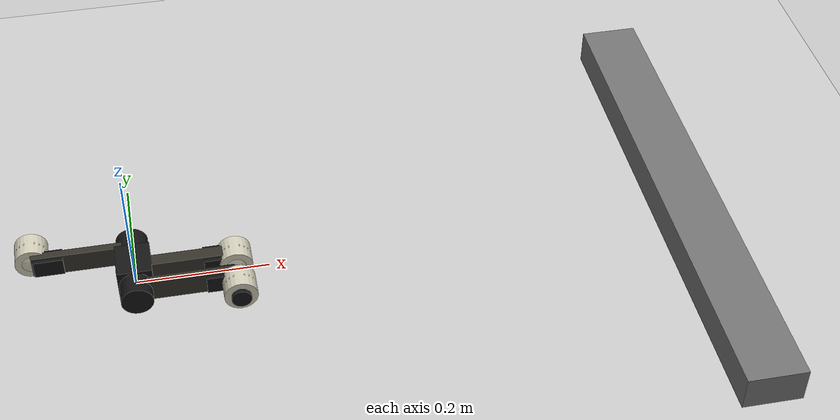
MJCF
<mujoco model="three_wheel_nested_mjx_flat">

  <compiler angle="radian"
            coordinate="local"
            inertiafromgeom="true"
            autolimits="true"/>

  <option timestep="0.01"
          gravity="0 0 -9.81"
          solver="Newton"
          iterations="80"
          integrator="RK4"/>

  <default>
    <joint damping="0.02"
           armature="0.0005"
           frictionloss="0.001"/>

    <geom contype="1"
          conaffinity="1"
          condim="3"
          friction="1.3 0.01 0.001"
          solref="0.01 1"
          solimp="0.9 0.95 0.001"/>

    <velocity ctrllimited="true"
              forcelimited="true"/>

    <position ctrllimited="true"
              forcelimited="true"/>
  </default>

  <asset>
    <texture name="grid"
             type="2d"
             builtin="checker"
             width="512"
             height="512"
             rgb1="0.85 0.85 0.85"
             rgb2="0.72 0.72 0.72"/>

    <material name="ground_mat"
              texture="grid"
              texrepeat="6 6"
              reflectance="0.1"/>

    <material name="leg_mat"
              rgba="0.20 0.19 0.16 1"/>

    <material name="wheel_mat"
              rgba="0.82 0.80 0.72 1"/>

    <material name="hub_mat"
              rgba="0.08 0.08 0.08 1"/>

    <material name="collision_wheel_mat"
              rgba="0.82 0.80 0.72 0.35"/>
    <material name="obstacle_mat"
              rgba="0.45 0.45 0.45 1"/>
  </asset>

  <worldbody>

    <light name="top_light"
           pos="0 0 3"
           dir="0 0 -1"
           diffuse="0.8 0.8 0.8"/>

    <camera name="cad_like_camera"
            pos="-0.65 -1.0 0.42"
            xyaxes="0.84 -0.54 0 0.22 0.34 0.91"/>

    <geom name="floor"
          type="plane"
          pos="0 0 0"
          size="5 2 0.1"
          material="ground_mat"
          friction="1.4 0.01 0.001"/>
      <!-- Low rectangular obstacle for later climbing / traversal. -->
    <geom name="step_obstacle"
          type="box"
          pos="0.85 0 0.0275"
          size="0.045 0.40 0.0275"
          material="obstacle_mat"
          friction="1.4 0.01 0.001"/>

    <!--
      Central root.
      qpos0 z = 0.025 m so all three wheel collision spheres initially touch ground.
    -->
    <body name="central_hub" pos="0 0 0.025">

      <freejoint name="root"/>

      <site name="imu"
            pos="0 0 0.020"
            size="0.006"
            rgba="0 1 0 1"/>

      <!-- Invisible electronics/battery mass. Collisionless box, MJX-safe. -->
      <geom name="electronics_mass"
            type="box"
            pos="0 0 0.012"
            size="0.035 0.022 0.012"
            mass="0.080"
            contype="0"
            conaffinity="0"
            rgba="0 0 0 0"/>

      <!-- Visual middle hub. Collisionless cylinder to avoid cylinder-box collision. -->
      <geom name="middle_hub_visual"
            type="cylinder"
            pos="0 0 0"
            euler="1.57079632679 0 0"
            size="0.024 0.065"
            mass="0.055"
            material="hub_mat"
            contype="0"
            conaffinity="0"/>

      <!-- Small physical central collision mass, using box instead of cylinder. -->
      <geom name="middle_hub_collision"
            type="box"
            pos="0 0 0"
            size="0.026 0.030 0.026"
            mass="0.001"
            material="hub_mat"
            friction="1.2 0.01 0.001"/>

      <!-- FRONT LOWER LEG                                           -->
      <!-- q = 0: points forward along +x                            -->
      <!-- q > 0: folds downward                                     -->

      <body name="front_lower_leg" pos="0 0 0">

        <joint name="front_lower_fold_hinge"
               type="hinge"
               axis="0 1 0"
               range="0.0 1.75"
               damping="0.08"
               armature="0.002"
               frictionloss="0.002"
               limited="true"/>

        <geom name="front_lower_side_arm"
              type="box"
              pos="0.075 -0.040 0"
              size="0.075 0.006 0.0175"
              mass="0.045"
              material="leg_mat"/>

        <geom name="front_lower_motor_pod"
              type="box"
              pos="0.125 -0.040 0"
              size="0.022 0.012 0.014"
              mass="0.015"
              material="hub_mat"/>

        <body name="front_lower_wheel" pos="0.150 -0.062 0">

          <joint name="front_lower_wheel_hinge"
                 type="hinge"
                 axis="0 1 0"
                 damping="0.01"
                 armature="0.0005"
                 frictionloss="0.0005"/>

          <!-- Visual wheel cylinder. Collisionless. -->
          <geom name="front_lower_wheel_visual"
                type="cylinder"
                euler="1.57079632679 0 0"
                size="0.025 0.020"
                mass="0.0001"
                material="wheel_mat"
                contype="0"
                conaffinity="0"/>

          <!-- Physical wheel collision. MJX-friendly sphere. -->
          <geom name="front_lower_wheel_collision"
                type="sphere"
                size="0.025"
                mass="0.050"
                material="collision_wheel_mat"
                friction="1.6 0.01 0.001"/>

          <!-- Visual hub cap. Collisionless cylinder. -->
          <geom name="front_lower_wheel_cap"
                type="cylinder"
                euler="1.57079632679 0 0"
                pos="0 -0.022 0"
                size="0.015 0.004"
                mass="0.0001"
                material="hub_mat"
                contype="0"
                conaffinity="0"/>

        </body>

      </body>

      <!-- REAR LOWER LEG                                            -->
      <!-- q = 0: points backward along -x                           -->
      <!-- q < 0: folds downward                                     -->

      <body name="rear_lower_leg" pos="0 0 0">

        <joint name="rear_lower_fold_hinge"
               type="hinge"
               axis="0 1 0"
               range="-1.75 0.0"
               damping="0.08"
               armature="0.002"
               frictionloss="0.002"
               limited="true"/>

        <geom name="rear_lower_side_arm"
              type="box"
              pos="-0.075 0.040 0"
              size="0.075 0.006 0.0175"
              mass="0.045"
              material="leg_mat"/>

        <geom name="rear_lower_motor_pod"
              type="box"
              pos="-0.125 0.040 0"
              size="0.022 0.012 0.014"
              mass="0.015"
              material="hub_mat"/>

        <body name="rear_lower_wheel" pos="-0.150 0.062 0">

          <joint name="rear_lower_wheel_hinge"
                 type="hinge"
                 axis="0 1 0"
                 damping="0.01"
                 armature="0.0005"
                 frictionloss="0.0005"/>

          <!-- Visual wheel cylinder. Collisionless. -->
          <geom name="rear_lower_wheel_visual"
                type="cylinder"
                euler="1.57079632679 0 0"
                size="0.025 0.020"
                mass="0.0001"
                material="wheel_mat"
                contype="0"
                conaffinity="0"/>

          <!-- Physical wheel collision. MJX-friendly sphere. -->
          <geom name="rear_lower_wheel_collision"
                type="sphere"
                size="0.025"
                mass="0.050"
                material="collision_wheel_mat"
                friction="1.6 0.01 0.001"/>

          <!-- Visual hub cap. Collisionless cylinder. -->
          <geom name="rear_lower_wheel_cap"
                type="cylinder"
                euler="1.57079632679 0 0"
                pos="0 0.022 0"
                size="0.015 0.004"
                mass="0.0001"
                material="hub_mat"
                contype="0"
                conaffinity="0"/>

        </body>

      </body>

      <!-- CENTERED UPPER ARM                                        -->
      <!-- q = 0: stowed horizontally along +x                       -->
      <!-- q > 0: swings downward                                    -->
      <!-- q < 0: swings upward                                      -->

      <body name="upper_swing_arm" pos="0 0 0">

        <joint name="upper_swing_hinge"
               type="hinge"
               axis="0 1 0"
               range="-1.75 1.75"
               damping="0.08"
               armature="0.003"
               frictionloss="0.002"
               limited="true"/>

        <!-- Visual swing hub. Collisionless cylinder. -->
        <geom name="upper_swing_hub_visual"
              type="cylinder"
              pos="0 0 0"
              euler="1.57079632679 0 0"
              size="0.019 0.045"
              mass="0.030"
              material="hub_mat"
              contype="0"
              conaffinity="0"/>

        <!-- Small physical hub collision as box. -->
        <geom name="upper_swing_hub_collision"
              type="box"
              pos="0 0 0"
              size="0.020 0.020 0.020"
              mass="0.001"
              material="hub_mat"
              friction="1.2 0.01 0.001"/>

        <geom name="upper_inner_arm"
              type="box"
              pos="0.075 0 0"
              size="0.075 0.010 0.0175"
              mass="0.060"
              material="leg_mat"/>

        <geom name="upper_motor_pod"
              type="box"
              pos="0.125 0 0"
              size="0.022 0.016 0.014"
              mass="0.015"
              material="hub_mat"/>

        <body name="upper_wheel" pos="0.150 0 0">

          <joint name="upper_wheel_hinge"
                 type="hinge"
                 axis="0 1 0"
                 damping="0.01"
                 armature="0.0005"
                 frictionloss="0.0005"/>

          <!-- Visual wheel cylinder. Collisionless. -->
          <geom name="upper_wheel_visual"
                type="cylinder"
                euler="1.57079632679 0 0"
                size="0.025 0.020"
                mass="0.0001"
                material="wheel_mat"
                contype="0"
                conaffinity="0"/>

          <!-- Physical wheel collision. MJX-friendly sphere. -->
          <geom name="upper_wheel_collision"
                type="sphere"
                size="0.025"
                mass="0.050"
                material="collision_wheel_mat"
                friction="1.6 0.01 0.001"/>

          <!-- Visual hub cap. Collisionless cylinder. -->
          <geom name="upper_wheel_cap"
                type="cylinder"
                euler="1.57079632679 0 0"
                pos="0 0.022 0"
                size="0.015 0.004"
                mass="0.0001"
                material="hub_mat"
                contype="0"
                conaffinity="0"/>

        </body>

      </body>

    </body>

  </worldbody>

  <!--
    Internal collision exclusions.
    Wheels still collide with floor.
    Internal mechanical parts are excluded for stable flat-ground training.
  -->
  <contact>
    <exclude body1="central_hub" body2="front_lower_leg"/>
    <exclude body1="central_hub" body2="rear_lower_leg"/>
    <exclude body1="central_hub" body2="upper_swing_arm"/>

    <exclude body1="front_lower_leg" body2="front_lower_wheel"/>
    <exclude body1="rear_lower_leg" body2="rear_lower_wheel"/>
    <exclude body1="upper_swing_arm" body2="upper_wheel"/>

    <exclude body1="central_hub" body2="front_lower_wheel"/>
    <exclude body1="central_hub" body2="rear_lower_wheel"/>
    <exclude body1="central_hub" body2="upper_wheel"/>

    <exclude body1="front_lower_leg" body2="rear_lower_leg"/>
    <exclude body1="front_lower_leg" body2="upper_swing_arm"/>
    <exclude body1="rear_lower_leg" body2="upper_swing_arm"/>
  </contact>

  <actuator>

    <!--
      Wheel velocity motors.
      800 g cm ≈ 0.078 N m.
      ctrl is target angular velocity in rad/s.
    -->

    <velocity name="front_lower_wheel_drive"
              joint="front_lower_wheel_hinge"
              kv="0.08"
              ctrlrange="-45 45"
              forcerange="-0.078 0.078"/>

    <velocity name="rear_lower_wheel_drive"
              joint="rear_lower_wheel_hinge"
              kv="0.08"
              ctrlrange="-45 45"
              forcerange="-0.078 0.078"/>

    <velocity name="upper_wheel_drive"
              joint="upper_wheel_hinge"
              kv="0.08"
              ctrlrange="-45 45"
              forcerange="-0.078 0.078"/>

    <!--
      Upper swing motor.
      q = 0 means upper arm stowed horizontally.
      q > 0 swings downward.
      q < 0 swings upward.
    -->
    <position name="upper_swing_servo"
              joint="upper_swing_hinge"
              kp="10"
              ctrlrange="-1.65 1.65"
              forcerange="-0.98 0.98"/>

    <!--
      Lower fold uses two mirrored servos.
      Your policy should output one fold variable, then duplicate it:
        front target = +fold
        rear target  = -fold
    -->

    <position name="front_lower_fold_servo"
              joint="front_lower_fold_hinge"
              kp="20"
              ctrlrange="0.0 1.65"
              forcerange="-0.98 0.98"/>

    <position name="rear_lower_fold_servo"
              joint="rear_lower_fold_hinge"
              kp="20"
              ctrlrange="-1.65 0.0"
              forcerange="-0.98 0.98"/>

  </actuator>

  <sensor>
      <framequat name="base_orientation"
           objtype="body"
           objname="central_hub"/>

    <gyro name="base_angular_velocity"
          site="imu"/>

    <accelerometer name="base_acceleration"
                   site="imu"/>

    <actuatorfrc name="front_lower_wheel_motor_torque"
                 actuator="front_lower_wheel_drive"/>

    <actuatorfrc name="rear_lower_wheel_motor_torque"
                 actuator="rear_lower_wheel_drive"/>

    <actuatorfrc name="upper_wheel_motor_torque"
                 actuator="upper_wheel_drive"/>

    <actuatorfrc name="upper_swing_servo_torque"
                 actuator="upper_swing_servo"/>

    <actuatorfrc name="front_lower_fold_servo_torque"
                 actuator="front_lower_fold_servo"/>

    <actuatorfrc name="rear_lower_fold_servo_torque"
                 actuator="rear_lower_fold_servo"/>

    <jointpos name="upper_swing_angle"
              joint="upper_swing_hinge"/>

    <jointvel name="upper_swing_velocity"
              joint="upper_swing_hinge"/>

    <jointpos name="front_lower_fold_angle"
              joint="front_lower_fold_hinge"/>

    <jointpos name="rear_lower_fold_angle"
              joint="rear_lower_fold_hinge"/>

    <jointvel name="front_lower_fold_velocity"
              joint="front_lower_fold_hinge"/>

    <jointvel name="rear_lower_fold_velocity"
              joint="rear_lower_fold_hinge"/>

    <jointvel name="front_lower_wheel_velocity"
              joint="front_lower_wheel_hinge"/>

    <jointvel name="rear_lower_wheel_velocity"
              joint="rear_lower_wheel_hinge"/>

    <jointvel name="upper_wheel_velocity"
              joint="upper_wheel_hinge"/>

  </sensor>

</mujoco>
